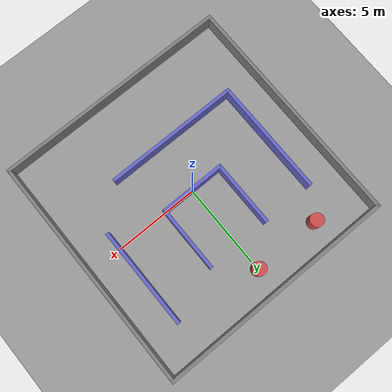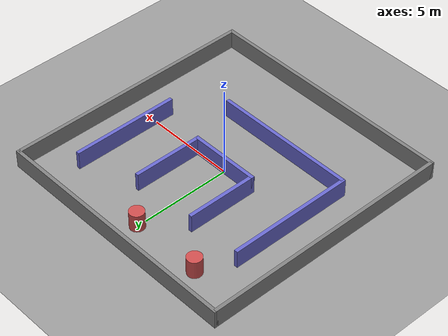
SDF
<?xml version="1.0" ?>
<sdf version="1.7">
  <world name="nav_challenge_world">

    <!-- Physics engine: enables dynamics simulation -->
    <plugin filename="gz-sim-physics-system"
            name="gz::sim::systems::Physics"/>

    <!-- User commands: allows spawning or deleting entities -->
    <plugin filename="gz-sim-user-commands-system"
            name="gz::sim::systems::UserCommands"/>

    <!-- Scene broadcaster: sends simulation updates to the GUI -->
    <plugin filename="gz-sim-scene-broadcaster-system"
            name="gz::sim::systems::SceneBroadcaster"/>

    <!-- Sensors system: enables simulated sensors like LiDAR -->
    <plugin filename="gz-sim-sensors-system"
            name="gz::sim::systems::Sensors">
      <render_engine>ogre</render_engine>
    </plugin>

    <light type="directional" name="sun">
      <cast_shadows>true</cast_shadows>
      <pose>0 0 10 0 0 0</pose>
      <diffuse>0.8 0.8 0.8 1</diffuse>
      <specular>0.2 0.2 0.2 1</specular>
      <attenuation>
        <range>1000</range>
        <constant>0.9</constant>
        <linear>0.01</linear>
        <quadratic>0.001</quadratic>
      </attenuation>
      <direction>-0.5 0.1 -0.9</direction>
    </light>

    <model name="ground_plane">
      <static>true</static>
      <link name="link">
        <collision name="collision">
          <geometry>
            <plane>
              <normal>0 0 1</normal>
              <size>50 50</size>
            </plane>
          </geometry>
        </collision>
        <visual name="visual">
          <geometry>
            <plane>
              <normal>0 0 1</normal>
              <size>50 50</size>
            </plane>
          </geometry>
          <material>
            <ambient>0.6 0.6 0.6 1</ambient>
            <diffuse>0.6 0.6 0.6 1</diffuse>
          </material>
        </visual>
      </link>
    </model>

    <model name="outer_wall_north">
      <static>true</static>
      <pose>0 7 0.5 0 0 0</pose>
      <link name="link"><collision name="c"><geometry><box><size>14.2 0.2 1.0</size></box></geometry></collision>
      <visual name="v"><geometry><box><size>14.2 0.2 1.0</size></box></geometry><material><ambient>0.3 0.3 0.3 1</ambient><diffuse>0.5 0.5 0.5 1</diffuse></material></visual></link>
    </model>

    <model name="outer_wall_south">
      <static>true</static>
      <pose>0 -7 0.5 0 0 0</pose>
      <link name="link"><collision name="c"><geometry><box><size>14.2 0.2 1.0</size></box></geometry></collision>
      <visual name="v"><geometry><box><size>14.2 0.2 1.0</size></box></geometry><material><ambient>0.3 0.3 0.3 1</ambient><diffuse>0.5 0.5 0.5 1</diffuse></material></visual></link>
    </model>

    <model name="outer_wall_east">
      <static>true</static>
      <pose>7 0 0.5 0 0 0</pose>
      <link name="link"><collision name="c"><geometry><box><size>0.2 14.0 1.0</size></box></geometry></collision>
      <visual name="v"><geometry><box><size>0.2 14.0 1.0</size></box></geometry><material><ambient>0.3 0.3 0.3 1</ambient><diffuse>0.5 0.5 0.5 1</diffuse></material></visual></link>
    </model>

    <model name="outer_wall_west">
      <static>true</static>
      <pose>-7 0 0.5 0 0 0</pose>
      <link name="link"><collision name="c"><geometry><box><size>0.2 14.0 1.0</size></box></geometry></collision>
      <visual name="v"><geometry><box><size>0.2 14.0 1.0</size></box></geometry><material><ambient>0.3 0.3 0.3 1</ambient><diffuse>0.5 0.5 0.5 1</diffuse></material></visual></link>
    </model>

    <model name="inner_L_bottom">
      <static>true</static>
      <pose>-1 -3 0.5 0 0 0</pose>
      <link name="link"><collision name="c"><geometry><box><size>8.0 0.2 1.0</size></box></geometry></collision>
      <visual name="v"><geometry><box><size>8.0 0.2 1.0</size></box></geometry><material><ambient>0.2 0.2 0.5 1</ambient><diffuse>0.4 0.4 0.8 1</diffuse></material></visual></link>
    </model>
    <model name="inner_L_left">
      <static>true</static>
      <pose>-5 0.4 0.5 0 0 0</pose>
      <link name="link"><collision name="c"><geometry><box><size>0.2 7.0 1.0</size></box></geometry></collision>
      <visual name="v"><geometry><box><size>0.2 7.0 1.0</size></box></geometry><material><ambient>0.2 0.2 0.5 1</ambient><diffuse>0.4 0.4 0.8 1</diffuse></material></visual></link>
    </model>

    <model name="inner_U_bottom">
      <static>true</static>
      <pose>0 0 0.5 0 0 0</pose>
      <link name="link"><collision name="c"><geometry><box><size>4.0 0.2 1.0</size></box></geometry></collision>
      <visual name="v"><geometry><box><size>4.0 0.2 1.0</size></box></geometry><material><ambient>0.2 0.2 0.5 1</ambient><diffuse>0.4 0.4 0.8 1</diffuse></material></visual></link>
    </model>
    <model name="inner_U_left">
      <static>true</static>
      <pose>-1.9 1.9 0.5 0 0 0</pose>
      <link name="link"><collision name="c"><geometry><box><size>0.2 4.0 1.0</size></box></geometry></collision>
      <visual name="v"><geometry><box><size>0.2 4.0 1.0</size></box></geometry><material><ambient>0.2 0.2 0.5 1</ambient><diffuse>0.4 0.4 0.8 1</diffuse></material></visual></link>
    </model>
    <model name="inner_U_right">
      <static>true</static>
      <pose>1.9 1.9 0.5 0 0 0</pose>
      <link name="link"><collision name="c"><geometry><box><size>0.2 4.0 1.0</size></box></geometry></collision>
      <visual name="v"><geometry><box><size>0.2 4.0 1.0</size></box></geometry><material><ambient>0.2 0.2 0.5 1</ambient><diffuse>0.4 0.4 0.8 1</diffuse></material></visual></link>
    </model>

    <model name="inner_straight_wall">
      <static>true</static>
      <pose>5 2 0.5 0 0 0</pose>
      <link name="link"><collision name="c"><geometry><box><size>0.2 6.0 1.0</size></box></geometry></collision>
      <visual name="v"><geometry><box><size>0.2 6.0 1.0</size></box></geometry><material><ambient>0.2 0.2 0.5 1</ambient><diffuse>0.4 0.4 0.8 1</diffuse></material></visual></link>
    </model>

    <model name="obstacle_cylinder_left">
      <static>true</static>
      <pose>-4 5.5 0.5 0 0 0</pose>
      <link name="link">
        <collision name="c"><geometry><cylinder><radius>0.4</radius><length>1.0</length></cylinder></geometry></collision>
        <visual name="v"><geometry><cylinder><radius>0.4</radius><length>1.0</length></cylinder></geometry><material><ambient>0.6 0.2 0.2 1</ambient><diffuse>0.8 0.3 0.3 1</diffuse></material></visual>
      </link>
    </model>

    <model name="obstacle_cylinder_right">
      <static>true</static>
      <pose>0 5.5 0.5 0 0 0</pose>
      <link name="link">
        <collision name="c"><geometry><cylinder><radius>0.4</radius><length>1.0</length></cylinder></geometry></collision>
        <visual name="v"><geometry><cylinder><radius>0.4</radius><length>1.0</length></cylinder></geometry><material><ambient>0.6 0.2 0.2 1</ambient><diffuse>0.8 0.3 0.3 1</diffuse></material></visual>
      </link>
    </model>

  </world>
</sdf>
